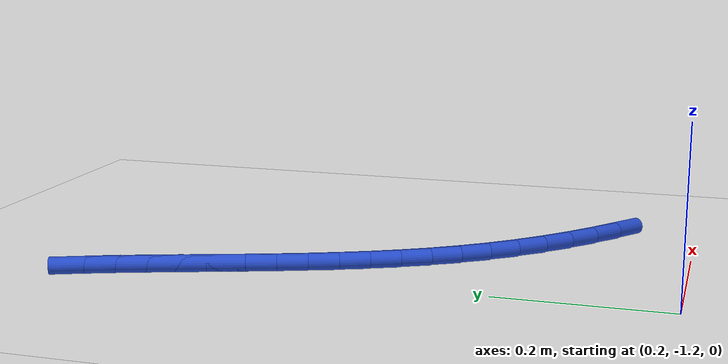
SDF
<sdf version="1.6">
 <world name="default">
  <model name="ground_plane">
   <static>1</static>
   <link name="link">
    <collision name="collision">
     <geometry><plane><normal>0 0 1</normal><size>100 100</size></plane></geometry>
     <surface><friction><ode><mu>100</mu><mu2>50</mu2></ode></friction></surface>
    </collision>
    <visual name="visual">
     <cast_shadows>0</cast_shadows>
     <geometry><plane><normal>0 0 1</normal><size>100 100</size></plane></geometry>
     <material>
      <script><uri>file://media/materials/scripts/gazebo.material</uri><name>Gazebo/WhiteGlow</name></script>
     </material>
    </visual>
   </link>
  </model>
  <model name="line">
   <link name="link_196">
    <pose>0.47780677711196984 -1.1025772872604067 0.01 0 1.57 -0.6613540267138491</pose>
    <collision name="collision">
     <geometry><cylinder><radius>0.01</radius><length>0.08</length></cylinder></geometry>
    </collision>
    <visual name="visual">
     <material>
      <script><name>Gazebo/Blue</name><uri>file://media/materials/scripts/gazebo.material</uri></script>
     </material>
     <geometry><cylinder><radius>0.01</radius><length>0.08</length></cylinder></geometry>
    </visual>
   </link>
   <link name="link_197">
    <pose>0.4463794532880673 -1.0781181300495355 0.01 0 1.57 -0.7141649098621174</pose>
    <collision name="collision">
     <geometry><cylinder><radius>0.01</radius><length>0.08</length></cylinder></geometry>
    </collision>
    <visual name="visual">
     <material>
      <script><name>Gazebo/Blue</name><uri>file://media/materials/scripts/gazebo.material</uri></script>
     </material>
     <geometry><cylinder><radius>0.01</radius><length>0.08</length></cylinder></geometry>
    </visual>
   </link>
   <link name="link_198">
    <pose>0.41654697622526693 -1.0522594395513776 0.01 0 1.57 -0.7686658626089713</pose>
    <collision name="collision">
     <geometry><cylinder><radius>0.01</radius><length>0.08</length></cylinder></geometry>
    </collision>
    <visual name="visual">
     <material>
      <script><name>Gazebo/Blue</name><uri>file://media/materials/scripts/gazebo.material</uri></script>
     </material>
     <geometry><cylinder><radius>0.01</radius><length>0.08</length></cylinder></geometry>
    </visual>
   </link>
   <link name="link_199">
    <pose>0.3884995994064775 -1.025135295377517 0.01 0 1.57 -0.8255678551241299</pose>
    <collision name="collision">
     <geometry><cylinder><radius>0.01</radius><length>0.08</length></cylinder></geometry>
    </collision>
    <visual name="visual">
     <material>
      <script><name>Gazebo/Blue</name><uri>file://media/materials/scripts/gazebo.material</uri></script>
     </material>
     <geometry><cylinder><radius>0.01</radius><length>0.08</length></cylinder></geometry>
    </visual>
   </link>
   <link name="link_200">
    <pose>0.3624275763146082 -0.9968797771395375 0.01 0 1.57 -0.8856343657586052</pose>
    <collision name="collision">
     <geometry><cylinder><radius>0.01</radius><length>0.08</length></cylinder></geometry>
    </collision>
    <visual name="visual">
     <material>
      <script><name>Gazebo/Blue</name><uri>file://media/materials/scripts/gazebo.material</uri></script>
     </material>
     <geometry><cylinder><radius>0.01</radius><length>0.08</length></cylinder></geometry>
    </visual>
   </link>
   <link name="link_201">
    <pose>0.3385211604325683 -0.9676269644490234 0.01 0 1.57 -0.9490829979079936</pose>
    <collision name="collision">
     <geometry><cylinder><radius>0.01</radius><length>0.08</length></cylinder></geometry>
    </collision>
    <visual name="visual">
     <material>
      <script><name>Gazebo/Blue</name><uri>file://media/materials/scripts/gazebo.material</uri></script>
     </material>
     <geometry><cylinder><radius>0.01</radius><length>0.08</length></cylinder></geometry>
    </visual>
   </link>
   <link name="link_202">
    <pose>0.31694104275885737 -0.9375081146449975 0.01 0 1.57 -1.0106146795523188</pose>
    <collision name="collision">
     <geometry><cylinder><radius>0.01</radius><length>0.08</length></cylinder></geometry>
    </collision>
    <visual name="visual">
     <material>
      <script><name>Gazebo/Blue</name><uri>file://media/materials/scripts/gazebo.material</uri></script>
     </material>
     <geometry><cylinder><radius>0.01</radius><length>0.08</length></cylinder></geometry>
    </visual>
   </link>
   <link name="link_203">
    <pose>0.29757311113600593 -0.906628250146698 0.01 0 1.57 -1.0663346099624926</pose>
    <collision name="collision">
     <geometry><cylinder><radius>0.01</radius><length>0.08</length></cylinder></geometry>
    </collision>
    <visual name="visual">
     <material>
      <script><name>Gazebo/Blue</name><uri>file://media/materials/scripts/gazebo.material</uri></script>
     </material>
     <geometry><cylinder><radius>0.01</radius><length>0.08</length></cylinder></geometry>
    </visual>
   </link>
   <link name="link_204">
    <pose>0.28015398182088874 -0.8750781427070576 0.01 0 1.57 -1.1153906793611958</pose>
    <collision name="collision">
     <geometry><cylinder><radius>0.01</radius><length>0.08</length></cylinder></geometry>
    </collision>
    <visual name="visual">
     <material>
      <script><name>Gazebo/Blue</name><uri>file://media/materials/scripts/gazebo.material</uri></script>
     </material>
     <geometry><cylinder><radius>0.01</radius><length>0.08</length></cylinder></geometry>
    </visual>
   </link>
   <link name="link_205">
    <pose>0.26441878541864067 -0.8429484222467436 0.01 0 1.57 -1.1572169627596063</pose>
    <collision name="collision">
     <geometry><cylinder><radius>0.01</radius><length>0.08</length></cylinder></geometry>
    </collision>
    <visual name="visual">
     <material>
      <script><name>Gazebo/Blue</name><uri>file://media/materials/scripts/gazebo.material</uri></script>
     </material>
     <geometry><cylinder><radius>0.01</radius><length>0.08</length></cylinder></geometry>
    </visual>
   </link>
   <link name="link_206">
    <pose>0.2501026525343954 -0.8103297186864215 0.01 0 1.57 -1.1914624096082866</pose>
    <collision name="collision">
     <geometry><cylinder><radius>0.01</radius><length>0.08</length></cylinder></geometry>
    </collision>
    <visual name="visual">
     <material>
      <script><name>Gazebo/Blue</name><uri>file://media/materials/scripts/gazebo.material</uri></script>
     </material>
     <geometry><cylinder><radius>0.01</radius><length>0.08</length></cylinder></geometry>
    </visual>
   </link>
   <link name="link_207">
    <pose>0.23694071377328824 -0.77731266194676 0.01 0 1.57 -1.2179363743562082</pose>
    <collision name="collision">
     <geometry><cylinder><radius>0.01</radius><length>0.08</length></cylinder></geometry>
    </collision>
    <visual name="visual">
     <material>
      <script><name>Gazebo/Blue</name><uri>file://media/materials/scripts/gazebo.material</uri></script>
     </material>
     <geometry><cylinder><radius>0.01</radius><length>0.08</length></cylinder></geometry>
    </visual>
   </link>
   <link name="link_208">
    <pose>0.22466809974045324 -0.7439878819484255 0.01 0 1.57 -1.2365537211110327</pose>
    <collision name="collision">
     <geometry><cylinder><radius>0.01</radius><length>0.08</length></cylinder></geometry>
    </collision>
    <visual name="visual">
     <material>
      <script><name>Gazebo/Blue</name><uri>file://media/materials/scripts/gazebo.material</uri></script>
     </material>
     <geometry><cylinder><radius>0.01</radius><length>0.08</length></cylinder></geometry>
    </visual>
   </link>
   <link name="link_209">
    <pose>0.2130199410410248 -0.7104460086120847 0.01 0 1.57 -1.2472880466191525</pose>
    <collision name="collision">
     <geometry><cylinder><radius>0.01</radius><length>0.08</length></cylinder></geometry>
    </collision>
    <visual name="visual">
     <material>
      <script><name>Gazebo/Blue</name><uri>file://media/materials/scripts/gazebo.material</uri></script>
     </material>
     <geometry><cylinder><radius>0.01</radius><length>0.08</length></cylinder></geometry>
    </visual>
   </link>
   <link name="link_210">
    <pose>0.20173136828013702 -0.6767776718584034 0.01 0 1.57 -1.2501374429181242</pose>
    <collision name="collision">
     <geometry><cylinder><radius>0.01</radius><length>0.08</length></cylinder></geometry>
    </collision>
    <visual name="visual">
     <material>
      <script><name>Gazebo/Blue</name><uri>file://media/materials/scripts/gazebo.material</uri></script>
     </material>
     <geometry><cylinder><radius>0.01</radius><length>0.08</length></cylinder></geometry>
    </visual>
   </link>
   <link name="link_211">
    <pose>0.1905375120629249 -0.6430735016080509 0.01 0 1.57 -1.245104514364052</pose>
    <collision name="collision">
     <geometry><cylinder><radius>0.01</radius><length>0.08</length></cylinder></geometry>
    </collision>
    <visual name="visual">
     <material>
      <script><name>Gazebo/Blue</name><uri>file://media/materials/scripts/gazebo.material</uri></script>
     </material>
     <geometry><cylinder><radius>0.01</radius><length>0.08</length></cylinder></geometry>
    </visual>
   </link>
   <link name="link_212">
    <pose>0.17917350299452262 -0.6094241277816926 0.01 0 1.57 -1.2321910625577737</pose>
    <collision name="collision">
     <geometry><cylinder><radius>0.01</radius><length>0.08</length></cylinder></geometry>
    </collision>
    <visual name="visual">
     <material>
      <script><name>Gazebo/Blue</name><uri>file://media/materials/scripts/gazebo.material</uri></script>
     </material>
     <geometry><cylinder><radius>0.01</radius><length>0.08</length></cylinder></geometry>
    </visual>
   </link>
   <link name="link_213">
    <pose>0.16737447168006467 -0.5759201802999959 0.01 0 1.57 -1.211407457233375</pose>
    <collision name="collision">
     <geometry><cylinder><radius>0.01</radius><length>0.08</length></cylinder></geometry>
    </collision>
    <visual name="visual">
     <material>
      <script><name>Gazebo/Blue</name><uri>file://media/materials/scripts/gazebo.material</uri></script>
     </material>
     <geometry><cylinder><radius>0.01</radius><length>0.08</length></cylinder></geometry>
    </visual>
   </link>
   <link name="link_214">
    <pose>0.15487554872468526 -0.5426522890836272 0.01 0 1.57 -1.1828856758087187</pose>
    <collision name="collision">
     <geometry><cylinder><radius>0.01</radius><length>0.08</length></cylinder></geometry>
    </collision>
    <visual name="visual">
     <material>
      <script><name>Gazebo/Blue</name><uri>file://media/materials/scripts/gazebo.material</uri></script>
     </material>
     <geometry><cylinder><radius>0.01</radius><length>0.08</length></cylinder></geometry>
    </visual>
   </link>
  </model>
 </world>
</sdf>
